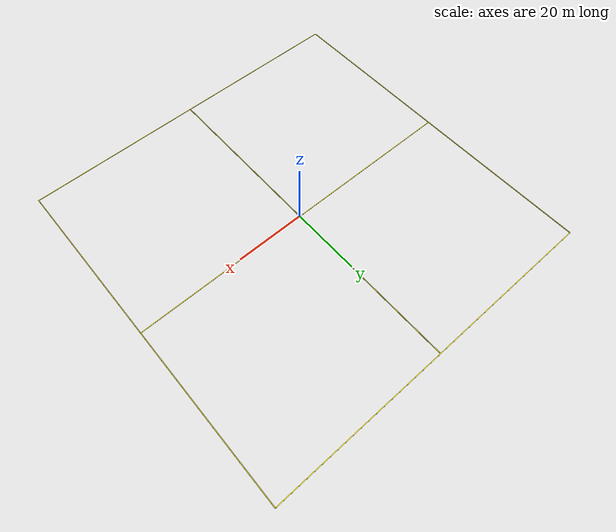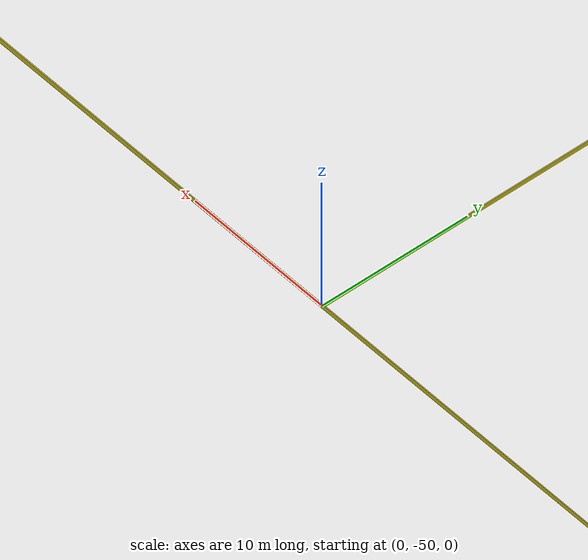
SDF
<?xml version="1.0" ?>
<sdf version="1.5">
  <model name="custom_fense">
    <static>true</static>

    <link name="custom_fense">
      <visual name="visual">
        <geometry>
          <box>
            <size>100 .2 .1</size>
          </box>
        </geometry>

        <material>
          <script>
            <uri>file://media/materials/scripts/gazebo.material</uri>
            <name>Gazebo/Yellow</name>
          </script>
        </material>

      </visual>
      <pose>0 -50 0 0 0 0</pose>
    </link>

    <link name="my_box_2">
      <visual name="visual">
        <geometry>
          <box>
            <size>100 .2 .1</size>
          </box>
        </geometry>

        <material>
          <script>
            <uri>file://media/materials/scripts/gazebo.material</uri>
            <name>Gazebo/Yellow</name>
          </script>
        </material>

      </visual>
      <pose>0 0 0 0 0 0</pose>
    </link>

    <link name="my_box_3">
      <visual name="visual">
        <geometry>
          <box>
            <size>100 .2 .1</size>
          </box>
        </geometry>

        <material>
          <script>
            <uri>file://media/materials/scripts/gazebo.material</uri>
            <name>Gazebo/Yellow</name>
          </script>
        </material>

      </visual>
      <pose>0 50 0 0 0 0</pose>
    </link>

    <link name="my_box_4">
      <visual name="visual">
        <geometry>
          <box>
            <size>100 .2 .1</size>
          </box>
        </geometry>

        <material>
          <script>
            <uri>file://media/materials/scripts/gazebo.material</uri>
            <name>Gazebo/Yellow</name>
          </script>
        </material>

      </visual>
      <pose>0 0 0 0 0 1.57</pose>
    </link>

    <link name="my_box_5">
      <visual name="visual">
        <geometry>
          <box>
            <size>100 .2 .1</size>
          </box>
        </geometry>

        <material>
          <script>
            <uri>file://media/materials/scripts/gazebo.material</uri>
            <name>Gazebo/Yellow</name>
          </script>
        </material>

      </visual>
      <pose>50 0 0 0 0 1.57</pose>
    </link>

    <link name="my_box_6">
      <visual name="visual">
        <geometry>
          <box>
            <size>100 .2 .1</size>
          </box>
        </geometry>

        <material>
          <script>
            <uri>file://media/materials/scripts/gazebo.material</uri>
            <name>Gazebo/Yellow</name>
          </script>
        </material>

      </visual>
      <pose>-50 0 0 0 0 1.57</pose>
    </link>

</model>
</sdf>
